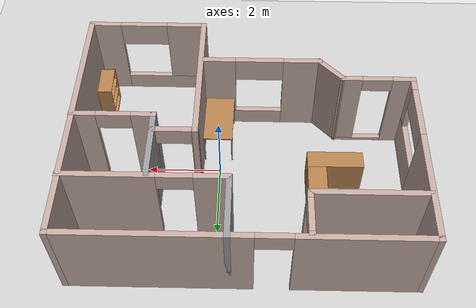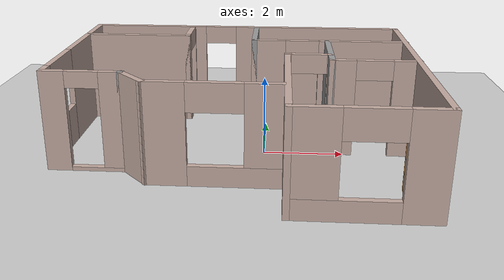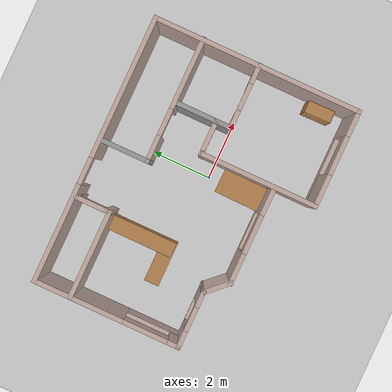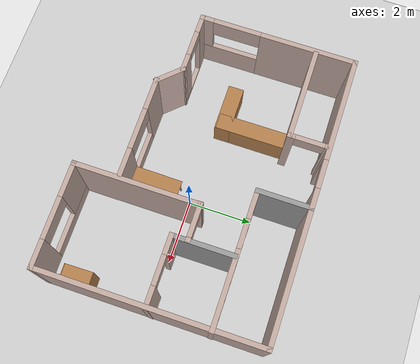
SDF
<sdf version="1.6">
 <world name="default">
  <model name="ground_plane">
   <static>1</static>
   <link name="link">
    <collision name="collision">
     <geometry><plane><normal>0 0 1</normal><size>100 100</size></plane></geometry>
     <surface><friction><ode><mu>100</mu><mu2>50</mu2></ode></friction></surface>
    </collision>
    <visual name="visual">
     <cast_shadows>0</cast_shadows>
     <geometry><plane><normal>0 0 1</normal><size>100 100</size></plane></geometry>
     <material>
      <script><uri>file://media/materials/scripts/gazebo.material</uri><name>Gazebo/Grey</name></script>
     </material>
    </visual>
   </link>
  </model>
  <model name="Building">
   <pose>-0.691358 0.12833 0 0 -0 0</pose>
   <link name="Wall_0">
    <pose>-0.008719 3.42505 0 0 -0 0</pose>
    <visual name="Wall_0_Visual_0">
     <pose>-2.83723 0 1.25 0 -0 0</pose>
     <geometry><box><size>3.32554 0.15 2.5</size></box></geometry>
     <material>
      <script><uri>file://media/materials/scripts/gazebo.material</uri><name>Gazebo/Grey</name></script>
      <ambient>0.760784 0.662745 0.627451 1</ambient>
     </material>
     <meta><layer>0</layer></meta>
    </visual>
    <collision name="Wall_0_Collision_0">
     <geometry><box><size>3.32554 0.15 2.5</size></box></geometry>
     <pose>-2.83723 0 1.25 0 -0 0</pose>
    </collision>
    <visual name="Wall_0_Visual_1">
     <pose>2.11277 0 1.25 0 -0 0</pose>
     <geometry><box><size>4.77445 0.15 2.5</size></box></geometry>
     <material>
      <script><uri>file://media/materials/scripts/gazebo.material</uri><name>Gazebo/Grey</name></script>
      <ambient>0.760784 0.662745 0.627451 1</ambient>
     </material>
     <meta><layer>0</layer></meta>
    </visual>
    <collision name="Wall_0_Collision_1">
     <geometry><box><size>4.77445 0.15 2.5</size></box></geometry>
     <pose>2.11277 0 1.25 0 -0 0</pose>
    </collision>
    <visual name="Wall_0_Visual_2">
     <pose>-0.724455 0 2.25 0 -0 0</pose>
     <geometry><box><size>0.9 0.15 0.5</size></box></geometry>
     <material>
      <script><uri>file://media/materials/scripts/gazebo.material</uri><name>Gazebo/Grey</name></script>
      <ambient>0.760784 0.662745 0.627451 1</ambient>
     </material>
     <meta><layer>0</layer></meta>
    </visual>
    <collision name="Wall_0_Collision_2">
     <geometry><box><size>0.9 0.15 0.5</size></box></geometry>
     <pose>-0.724455 0 2.25 0 -0 0</pose>
    </collision>
   </link>
   <link name="Wall_17">
    <collision name="Wall_17_Collision">
     <geometry><box><size>7 0.15 2.5</size></box></geometry>
     <pose>0 0 1.25 0 -0 0</pose>
    </collision>
    <visual name="Wall_17_Visual">
     <pose>0 0 1.25 0 -0 0</pose>
     <geometry><box><size>7 0.15 2.5</size></box></geometry>
     <material>
      <script><uri>file://media/materials/scripts/gazebo.material</uri><name>Gazebo/Grey</name></script>
      <ambient>0.760784 0.662745 0.627451 1</ambient>
     </material>
     <meta><layer>0</layer></meta>
    </visual>
    <pose>4.41628 5.1e-05 0 0 0 -1.5708</pose>
   </link>
   <link name="Wall_19">
    <pose>2.83077 -3.42495 0 0 -0 3.14159</pose>
    <visual name="Wall_19_Visual_0">
     <pose>-1.20755 0 1.25 0 -0 0</pose>
     <geometry><box><size>0.905905 0.15 2.5</size></box></geometry>
     <material>
      <script><uri>file://media/materials/scripts/gazebo.material</uri><name>Gazebo/Grey</name></script>
      <ambient>0.760784 0.662745 0.627451 1</ambient>
     </material>
     <meta><layer>0</layer></meta>
    </visual>
    <collision name="Wall_19_Collision_0">
     <geometry><box><size>0.905905 0.15 2.5</size></box></geometry>
     <pose>-1.20755 0 1.25 0 -0 0</pose>
    </collision>
    <visual name="Wall_19_Visual_1">
     <pose>0.452953 0 0.25 0 -0 0</pose>
     <geometry><box><size>2.41511 0.15 0.5</size></box></geometry>
     <material>
      <script><uri>file://media/materials/scripts/gazebo.material</uri><name>Gazebo/Grey</name></script>
      <ambient>0.760784 0.662745 0.627451 1</ambient>
     </material>
     <meta><layer>0</layer></meta>
    </visual>
    <collision name="Wall_19_Collision_1">
     <geometry><box><size>2.41511 0.15 0.5</size></box></geometry>
     <pose>0.452953 0 0.25 0 -0 0</pose>
    </collision>
    <visual name="Wall_19_Visual_2">
     <pose>1.10295 0 1.5 0 -0 0</pose>
     <geometry><box><size>1.11511 0.15 2</size></box></geometry>
     <material>
      <script><uri>file://media/materials/scripts/gazebo.material</uri><name>Gazebo/Grey</name></script>
      <ambient>0.760784 0.662745 0.627451 1</ambient>
     </material>
     <meta><layer>0</layer></meta>
    </visual>
    <collision name="Wall_19_Collision_2">
     <geometry><box><size>1.11511 0.15 2</size></box></geometry>
     <pose>1.10295 0 1.5 0 -0 0</pose>
    </collision>
    <visual name="Wall_19_Visual_3">
     <pose>-0.104603 0 2.15 0 -0 0</pose>
     <geometry><box><size>1.3 0.15 0.7</size></box></geometry>
     <material>
      <script><uri>file://media/materials/scripts/gazebo.material</uri><name>Gazebo/Grey</name></script>
      <ambient>0.760784 0.662745 0.627451 1</ambient>
     </material>
     <meta><layer>0</layer></meta>
    </visual>
    <collision name="Wall_19_Collision_3">
     <geometry><box><size>1.3 0.15 0.7</size></box></geometry>
     <pose>-0.104603 0 2.15 0 -0 0</pose>
    </collision>
   </link>
   <link name="Wall_23">
    <pose>-3.50872 -1.42495 0 0 -0 0</pose>
    <visual name="Wall_23_Visual_0">
     <pose>-0.693942 0 1.25 0 -0 0</pose>
     <geometry><box><size>0.612115 0.15 2.5</size></box></geometry>
     <material>
      <script><uri>file://media/materials/scripts/gazebo.material</uri><name>Gazebo/Grey</name></script>
      <ambient>0.760784 0.662745 0.627451 1</ambient>
     </material>
     <meta><layer>0</layer></meta>
    </visual>
    <collision name="Wall_23_Collision_0">
     <geometry><box><size>0.612115 0.15 2.5</size></box></geometry>
     <pose>-0.693942 0 1.25 0 -0 0</pose>
    </collision>
    <visual name="Wall_23_Visual_1">
     <pose>0.306058 0 0.05 0 -0 0</pose>
     <geometry><box><size>1.38789 0.15 0.1</size></box></geometry>
     <material>
      <script><uri>file://media/materials/scripts/gazebo.material</uri><name>Gazebo/Grey</name></script>
      <ambient>0.760784 0.662745 0.627451 1</ambient>
     </material>
     <meta><layer>0</layer></meta>
    </visual>
    <collision name="Wall_23_Collision_1">
     <geometry><box><size>1.38789 0.15 0.1</size></box></geometry>
     <pose>0.306058 0 0.05 0 -0 0</pose>
    </collision>
    <visual name="Wall_23_Visual_2">
     <pose>0.706058 0 1.3 0 -0 0</pose>
     <geometry><box><size>0.587885 0.15 2.4</size></box></geometry>
     <material>
      <script><uri>file://media/materials/scripts/gazebo.material</uri><name>Gazebo/Grey</name></script>
      <ambient>0.760784 0.662745 0.627451 1</ambient>
     </material>
     <meta><layer>0</layer></meta>
    </visual>
    <collision name="Wall_23_Collision_2">
     <geometry><box><size>0.587885 0.15 2.4</size></box></geometry>
     <pose>0.706058 0 1.3 0 -0 0</pose>
    </collision>
    <visual name="Wall_23_Visual_3">
     <pose>0.012115 0 2.3 0 -0 0</pose>
     <geometry><box><size>0.8 0.15 0.4</size></box></geometry>
     <material>
      <script><uri>file://media/materials/scripts/gazebo.material</uri><name>Gazebo/Grey</name></script>
      <ambient>0.760784 0.662745 0.627451 1</ambient>
     </material>
     <meta><layer>0</layer></meta>
    </visual>
    <collision name="Wall_23_Collision_3">
     <geometry><box><size>0.8 0.15 0.4</size></box></geometry>
     <pose>0.012115 0 2.3 0 -0 0</pose>
    </collision>
   </link>
   <link name="Wall_24">
    <collision name="Wall_24_Collision">
     <geometry><box><size>1.02135 0.15 2.5</size></box></geometry>
     <pose>0 0 1.25 0 -0 0</pose>
    </collision>
    <visual name="Wall_24_Visual">
     <pose>0 0 1.25 0 -0 0</pose>
     <geometry><box><size>1.02135 0.15 2.5</size></box></geometry>
     <material>
      <script><uri>file://media/materials/scripts/gazebo.material</uri><name>Gazebo/Grey</name></script>
      <ambient>0.760784 0.662745 0.627451 1</ambient>
     </material>
     <meta><layer>0</layer></meta>
    </visual>
    <pose>-2.2832 -1.74038 0 0 0 -0.809608</pose>
   </link>
   <link name="Wall_27">
    <collision name="Wall_27_Collision">
     <geometry><box><size>1.75 0.15 2.5</size></box></geometry>
     <pose>0 0 1.25 0 -0 0</pose>
    </collision>
    <visual name="Wall_27_Visual">
     <pose>0 0 1.25 0 -0 0</pose>
     <geometry><box><size>1.75 0.15 2.5</size></box></geometry>
     <material>
      <script><uri>file://media/materials/scripts/gazebo.material</uri><name>Gazebo/Grey</name></script>
      <ambient>1 1 1 1</ambient>
     </material>
     <meta><layer>0</layer></meta>
    </visual>
    <pose>0.33372 2.62505 0 0 0 -1.5708</pose>
   </link>
   <link name="Wall_28">
    <pose>2.38372 1.82505 0 0 -0 0</pose>
    <visual name="Wall_28_Visual_0">
     <pose>-1.65584 0 1.25 0 -0 0</pose>
     <geometry><box><size>0.93832 0.15 2.5</size></box></geometry>
     <material>
      <script><uri>file://media/materials/scripts/gazebo.material</uri><name>Gazebo/Grey</name></script>
      <ambient>0.760784 0.662745 0.627451 1</ambient>
     </material>
     <meta><layer>0</layer></meta>
    </visual>
    <collision name="Wall_28_Collision_0">
     <geometry><box><size>0.93832 0.15 2.5</size></box></geometry>
     <pose>-1.65584 0 1.25 0 -0 0</pose>
    </collision>
    <visual name="Wall_28_Visual_1">
     <pose>0.91916 0 1.25 0 -0 0</pose>
     <geometry><box><size>2.41168 0.15 2.5</size></box></geometry>
     <material>
      <script><uri>file://media/materials/scripts/gazebo.material</uri><name>Gazebo/Grey</name></script>
      <ambient>0.760784 0.662745 0.627451 1</ambient>
     </material>
     <meta><layer>0</layer></meta>
    </visual>
    <collision name="Wall_28_Collision_1">
     <geometry><box><size>2.41168 0.15 2.5</size></box></geometry>
     <pose>0.91916 0 1.25 0 -0 0</pose>
    </collision>
    <visual name="Wall_28_Visual_2">
     <pose>-0.73668 0 2.25 0 -0 0</pose>
     <geometry><box><size>0.9 0.15 0.5</size></box></geometry>
     <material>
      <script><uri>file://media/materials/scripts/gazebo.material</uri><name>Gazebo/Grey</name></script>
      <ambient>0.760784 0.662745 0.627451 1</ambient>
     </material>
     <meta><layer>0</layer></meta>
    </visual>
    <collision name="Wall_28_Collision_2">
     <geometry><box><size>0.9 0.15 0.5</size></box></geometry>
     <pose>-0.73668 0 2.25 0 -0 0</pose>
    </collision>
   </link>
   <link name="Wall_30">
    <collision name="Wall_30_Collision">
     <geometry><box><size>2 0.15 2.5</size></box></geometry>
     <pose>0 0 1.25 0 -0 0</pose>
    </collision>
    <visual name="Wall_30_Visual">
     <pose>0 0 1.25 0 -0 0</pose>
     <geometry><box><size>2 0.15 2.5</size></box></geometry>
     <material>
      <script><uri>file://media/materials/scripts/gazebo.material</uri><name>Gazebo/Grey</name></script>
      <ambient>1 1 1 1</ambient>
     </material>
     <meta><layer>0</layer></meta>
    </visual>
    <pose>2.32759 0.85598 0 0 0 -1.5708</pose>
   </link>
   <link name="Wall_32">
    <pose>3.37759 -0.06902 0 0 -0 0</pose>
    <visual name="Wall_32_Visual_0">
     <pose>-0.796543 0 1.25 0 -0 0</pose>
     <geometry><box><size>0.656914 0.15 2.5</size></box></geometry>
     <material>
      <script><uri>file://media/materials/scripts/gazebo.material</uri><name>Gazebo/Grey</name></script>
      <ambient>0.760784 0.662745 0.627451 1</ambient>
     </material>
     <meta><layer>0</layer></meta>
    </visual>
    <collision name="Wall_32_Collision_0">
     <geometry><box><size>0.656914 0.15 2.5</size></box></geometry>
     <pose>-0.796543 0 1.25 0 -0 0</pose>
    </collision>
    <visual name="Wall_32_Visual_1">
     <pose>0.778457 0 1.25 0 -0 0</pose>
     <geometry><box><size>0.693086 0.15 2.5</size></box></geometry>
     <material>
      <script><uri>file://media/materials/scripts/gazebo.material</uri><name>Gazebo/Grey</name></script>
      <ambient>0.760784 0.662745 0.627451 1</ambient>
     </material>
     <meta><layer>0</layer></meta>
    </visual>
    <collision name="Wall_32_Collision_1">
     <geometry><box><size>0.693086 0.15 2.5</size></box></geometry>
     <pose>0.778457 0 1.25 0 -0 0</pose>
    </collision>
    <visual name="Wall_32_Visual_2">
     <pose>-0.018086 0 2.25 0 -0 0</pose>
     <geometry><box><size>0.9 0.15 0.5</size></box></geometry>
     <material>
      <script><uri>file://media/materials/scripts/gazebo.material</uri><name>Gazebo/Grey</name></script>
      <ambient>0.760784 0.662745 0.627451 1</ambient>
     </material>
     <meta><layer>0</layer></meta>
    </visual>
    <collision name="Wall_32_Collision_2">
     <geometry><box><size>0.9 0.15 0.5</size></box></geometry>
     <pose>-0.018086 0 2.25 0 -0 0</pose>
    </collision>
   </link>
   <link name="Wall_34">
    <collision name="Wall_34_Collision">
     <geometry><box><size>3 0.15 2.5</size></box></geometry>
     <pose>0 0 1.25 0 -0 0</pose>
    </collision>
    <visual name="Wall_34_Visual">
     <pose>0 0 1.25 0 -0 0</pose>
     <geometry><box><size>3 0.15 2.5</size></box></geometry>
     <material>
      <script><uri>file://media/materials/scripts/gazebo.material</uri><name>Gazebo/Grey</name></script>
      <ambient>0.760784 0.662745 0.627451 1</ambient>
     </material>
     <meta><layer>0</layer></meta>
    </visual>
    <pose>-2.99858 2.21823 0 0 -0 0</pose>
   </link>
   <link name="Wall_35">
    <pose>-1.57358 2.76823 0 0 -0 1.5708</pose>
    <visual name="Wall_35_Visual_0">
     <pose>-0.506424 0 1.25 0 -0 0</pose>
     <geometry><box><size>0.237152 0.15 2.5</size></box></geometry>
     <material>
      <script><uri>file://media/materials/scripts/gazebo.material</uri><name>Gazebo/Grey</name></script>
      <ambient>0.760784 0.662745 0.627451 1</ambient>
     </material>
     <meta><layer>0</layer></meta>
    </visual>
    <collision name="Wall_35_Collision_0">
     <geometry><box><size>0.237152 0.15 2.5</size></box></geometry>
     <pose>-0.506424 0 1.25 0 -0 0</pose>
    </collision>
    <visual name="Wall_35_Visual_1">
     <pose>0.568576 0 1.25 0 -0 0</pose>
     <geometry><box><size>0.112848 0.15 2.5</size></box></geometry>
     <material>
      <script><uri>file://media/materials/scripts/gazebo.material</uri><name>Gazebo/Grey</name></script>
      <ambient>0.760784 0.662745 0.627451 1</ambient>
     </material>
     <meta><layer>0</layer></meta>
    </visual>
    <collision name="Wall_35_Collision_1">
     <geometry><box><size>0.112848 0.15 2.5</size></box></geometry>
     <pose>0.568576 0 1.25 0 -0 0</pose>
    </collision>
    <visual name="Wall_35_Visual_2">
     <pose>0.062152 0 2.25 0 -0 0</pose>
     <geometry><box><size>0.9 0.15 0.5</size></box></geometry>
     <material>
      <script><uri>file://media/materials/scripts/gazebo.material</uri><name>Gazebo/Grey</name></script>
      <ambient>0.760784 0.662745 0.627451 1</ambient>
     </material>
     <meta><layer>0</layer></meta>
    </visual>
    <collision name="Wall_35_Collision_2">
     <geometry><box><size>0.9 0.15 0.5</size></box></geometry>
     <pose>0.062152 0 2.25 0 -0 0</pose>
    </collision>
   </link>
   <link name="Wall_37">
    <collision name="Wall_37_Collision">
     <geometry><box><size>3.99026 0.15 2.5</size></box></geometry>
     <pose>0 0 1.25 0 -0 0</pose>
    </collision>
    <visual name="Wall_37_Visual">
     <pose>0 0 1.25 0 -0 0</pose>
     <geometry><box><size>3.99026 0.15 2.5</size></box></geometry>
     <material>
      <script><uri>file://media/materials/scripts/gazebo.material</uri><name>Gazebo/Grey</name></script>
      <ambient>0.760784 0.662745 0.627451 1</ambient>
     </material>
     <meta><layer>0</layer></meta>
    </visual>
    <pose>1.23533 -1.50492 0 0 -0 1.57079</pose>
   </link>
   <link name="Wall_38">
    <pose>1.77039 0.415108 0 0 -0 0</pose>
    <visual name="Wall_38_Visual_0">
     <pose>-0.529272 0 1.25 0 -0 0</pose>
     <geometry><box><size>0.181455 0.15 2.5</size></box></geometry>
     <material>
      <script><uri>file://media/materials/scripts/gazebo.material</uri><name>Gazebo/Grey</name></script>
      <ambient>0.760784 0.662745 0.627451 1</ambient>
     </material>
     <meta><layer>0</layer></meta>
    </visual>
    <collision name="Wall_38_Collision_0">
     <geometry><box><size>0.181455 0.15 2.5</size></box></geometry>
     <pose>-0.529272 0 1.25 0 -0 0</pose>
    </collision>
    <visual name="Wall_38_Visual_1">
     <pose>0.540728 0 1.25 0 -0 0</pose>
     <geometry><box><size>0.158545 0.15 2.5</size></box></geometry>
     <material>
      <script><uri>file://media/materials/scripts/gazebo.material</uri><name>Gazebo/Grey</name></script>
      <ambient>0.760784 0.662745 0.627451 1</ambient>
     </material>
     <meta><layer>0</layer></meta>
    </visual>
    <collision name="Wall_38_Collision_1">
     <geometry><box><size>0.158545 0.15 2.5</size></box></geometry>
     <pose>0.540728 0 1.25 0 -0 0</pose>
    </collision>
    <visual name="Wall_38_Visual_2">
     <pose>0.011455 0 2.25 0 -0 0</pose>
     <geometry><box><size>0.9 0.15 0.5</size></box></geometry>
     <material>
      <script><uri>file://media/materials/scripts/gazebo.material</uri><name>Gazebo/Grey</name></script>
      <ambient>0.760784 0.662745 0.627451 1</ambient>
     </material>
     <meta><layer>0</layer></meta>
    </visual>
    <collision name="Wall_38_Collision_2">
     <geometry><box><size>0.9 0.15 0.5</size></box></geometry>
     <pose>0.011455 0 2.25 0 -0 0</pose>
    </collision>
   </link>
   <link name="Wall_4">
    <pose>-4.43372 1.00005 0 0 0 -1.5708</pose>
    <visual name="Wall_4_Visual_0">
     <pose>-0.974806 0 1.25 0 -0 0</pose>
     <geometry><box><size>3.05039 0.15 2.5</size></box></geometry>
     <material>
      <script><uri>file://media/materials/scripts/gazebo.material</uri><name>Gazebo/Grey</name></script>
      <ambient>0.760784 0.662745 0.627451 1</ambient>
     </material>
     <meta><layer>0</layer></meta>
    </visual>
    <collision name="Wall_4_Collision_0">
     <geometry><box><size>3.05039 0.15 2.5</size></box></geometry>
     <pose>-0.974806 0 1.25 0 -0 0</pose>
    </collision>
    <visual name="Wall_4_Visual_1">
     <pose>1.52519 0 0.5 0 -0 0</pose>
     <geometry><box><size>1.94961 0.15 1</size></box></geometry>
     <material>
      <script><uri>file://media/materials/scripts/gazebo.material</uri><name>Gazebo/Grey</name></script>
      <ambient>0.760784 0.662745 0.627451 1</ambient>
     </material>
     <meta><layer>0</layer></meta>
    </visual>
    <collision name="Wall_4_Collision_1">
     <geometry><box><size>1.94961 0.15 1</size></box></geometry>
     <pose>1.52519 0 0.5 0 -0 0</pose>
    </collision>
    <visual name="Wall_4_Visual_2">
     <pose>2.27519 0 1.75 0 -0 0</pose>
     <geometry><box><size>0.449611 0.15 1.5</size></box></geometry>
     <material>
      <script><uri>file://media/materials/scripts/gazebo.material</uri><name>Gazebo/Grey</name></script>
      <ambient>0.760784 0.662745 0.627451 1</ambient>
     </material>
     <meta><layer>0</layer></meta>
    </visual>
    <collision name="Wall_4_Collision_2">
     <geometry><box><size>0.449611 0.15 1.5</size></box></geometry>
     <pose>2.27519 0 1.75 0 -0 0</pose>
    </collision>
    <visual name="Wall_4_Visual_3">
     <pose>1.30039 0 2.15 0 -0 0</pose>
     <geometry><box><size>1.5 0.15 0.7</size></box></geometry>
     <material>
      <script><uri>file://media/materials/scripts/gazebo.material</uri><name>Gazebo/Grey</name></script>
      <ambient>0.760784 0.662745 0.627451 1</ambient>
     </material>
     <meta><layer>0</layer></meta>
    </visual>
    <collision name="Wall_4_Collision_3">
     <geometry><box><size>1.5 0.15 0.7</size></box></geometry>
     <pose>1.30039 0 2.15 0 -0 0</pose>
    </collision>
   </link>
   <link name="Wall_40">
    <pose>-0.432678 -2.05582 0 0 -0 0</pose>
    <visual name="Wall_40_Visual_0">
     <pose>-1.09985 0 1.25 0 -0 0</pose>
     <geometry><box><size>1.0503 0.15 2.5</size></box></geometry>
     <material>
      <script><uri>file://media/materials/scripts/gazebo.material</uri><name>Gazebo/Grey</name></script>
      <ambient>0.760784 0.662745 0.627451 1</ambient>
     </material>
     <meta><layer>0</layer></meta>
    </visual>
    <collision name="Wall_40_Collision_0">
     <geometry><box><size>1.0503 0.15 2.5</size></box></geometry>
     <pose>-1.09985 0 1.25 0 -0 0</pose>
    </collision>
    <visual name="Wall_40_Visual_1">
     <pose>0.52515 0 0.25 0 -0 0</pose>
     <geometry><box><size>2.1997 0.15 0.5</size></box></geometry>
     <material>
      <script><uri>file://media/materials/scripts/gazebo.material</uri><name>Gazebo/Grey</name></script>
      <ambient>0.760784 0.662745 0.627451 1</ambient>
     </material>
     <meta><layer>0</layer></meta>
    </visual>
    <collision name="Wall_40_Collision_1">
     <geometry><box><size>2.1997 0.15 0.5</size></box></geometry>
     <pose>0.52515 0 0.25 0 -0 0</pose>
    </collision>
    <visual name="Wall_40_Visual_2">
     <pose>1.17515 0 1.5 0 -0 0</pose>
     <geometry><box><size>0.8997 0.15 2</size></box></geometry>
     <material>
      <script><uri>file://media/materials/scripts/gazebo.material</uri><name>Gazebo/Grey</name></script>
      <ambient>0.760784 0.662745 0.627451 1</ambient>
     </material>
     <meta><layer>0</layer></meta>
    </visual>
    <collision name="Wall_40_Collision_2">
     <geometry><box><size>0.8997 0.15 2</size></box></geometry>
     <pose>1.17515 0 1.5 0 -0 0</pose>
    </collision>
    <visual name="Wall_40_Visual_3">
     <pose>0.0753 0 2.15 0 -0 0</pose>
     <geometry><box><size>1.3 0.15 0.7</size></box></geometry>
     <material>
      <script><uri>file://media/materials/scripts/gazebo.material</uri><name>Gazebo/Grey</name></script>
      <ambient>0.760784 0.662745 0.627451 1</ambient>
     </material>
     <meta><layer>0</layer></meta>
    </visual>
    <collision name="Wall_40_Collision_3">
     <geometry><box><size>1.3 0.15 0.7</size></box></geometry>
     <pose>0.0753 0 2.15 0 -0 0</pose>
    </collision>
   </link>
   <link name="Wall_42">
    <collision name="Wall_42_Collision">
     <geometry><box><size>2.25 0.5 1</size></box></geometry>
     <pose>0 0 0.5 0 -0 0</pose>
    </collision>
    <visual name="Wall_42_Visual">
     <pose>0 0 0.5 0 -0 0</pose>
     <geometry><box><size>2.25 0.5 1</size></box></geometry>
     <material>
      <script><uri>file://media/materials/scripts/gazebo.material</uri><name>Gazebo/Wood</name></script>
      <ambient>1 1 1 1</ambient>
     </material>
     <meta><layer>0</layer></meta>
    </visual>
    <pose>-1.93472 1.06205 0 0 0 -1.5708</pose>
   </link>
   <link name="Wall_44">
    <collision name="Wall_44_Collision">
     <geometry><box><size>1.5 0.5 1</size></box></geometry>
     <pose>0 0 0.5 0 -0 0</pose>
    </collision>
    <visual name="Wall_44_Visual">
     <pose>0 0 0.5 0 -0 0</pose>
     <geometry><box><size>1.5 0.5 1</size></box></geometry>
     <material>
      <script><uri>file://media/materials/scripts/gazebo.material</uri><name>Gazebo/Wood</name></script>
      <ambient>1 1 1 1</ambient>
     </material>
     <meta><layer>0</layer></meta>
    </visual>
    <pose>-2.43272 0.148052 0 0 -0 3.14159</pose>
   </link>
   <link name="Wall_6">
    <collision name="Wall_6_Collision">
     <geometry><box><size>0.15 0.15 2.5</size></box></geometry>
     <pose>0 0 1.25 0 -0 0</pose>
    </collision>
    <visual name="Wall_6_Visual">
     <pose>0 0 1.25 0 -0 0</pose>
     <geometry><box><size>0.15 0.15 2.5</size></box></geometry>
     <material>
      <script><uri>file://media/materials/scripts/gazebo.material</uri><name>Gazebo/Grey</name></script>
      <ambient>1 1 1 1</ambient>
     </material>
     <meta><layer>0</layer></meta>
    </visual>
    <pose>-2.58372 -1.42495 0 0 -0 0</pose>
   </link>
   <static>1</static>
  </model>
  <model name="table">
   <static>1</static>
   <link name="link">
    <collision name="surface">
     <pose>0 0 1 0 -0 0</pose>
     <geometry><box><size>1.5 0.8 0.03</size></box></geometry>
     <surface><friction><ode><mu>0.6</mu><mu2>0.6</mu2></ode></friction></surface>
    </collision>
    <visual name="visual1">
     <pose>0 0 1 0 -0 0</pose>
     <geometry><box><size>1.5 0.8 0.03</size></box></geometry>
     <material>
      <script><uri>file://media/materials/scripts/gazebo.material</uri><name>Gazebo/Wood</name></script>
     </material>
    </visual>
    <collision name="front_left_leg">
     <pose>0.68 0.38 0.5 0 -0 0</pose>
     <geometry><cylinder><radius>0.02</radius><length>1</length></cylinder></geometry>
    </collision>
    <visual name="front_left_leg">
     <pose>0.68 0.38 0.5 0 -0 0</pose>
     <geometry><cylinder><radius>0.02</radius><length>1</length></cylinder></geometry>
     <material>
      <script><uri>file://media/materials/scripts/gazebo.material</uri><name>Gazebo/Grey</name></script>
     </material>
    </visual>
    <collision name="front_right_leg">
     <pose>0.68 -0.38 0.5 0 -0 0</pose>
     <geometry><cylinder><radius>0.02</radius><length>1</length></cylinder></geometry>
    </collision>
    <visual name="front_right_leg">
     <pose>0.68 -0.38 0.5 0 -0 0</pose>
     <geometry><cylinder><radius>0.02</radius><length>1</length></cylinder></geometry>
     <material>
      <script><uri>file://media/materials/scripts/gazebo.material</uri><name>Gazebo/Grey</name></script>
     </material>
    </visual>
    <collision name="back_right_leg">
     <pose>-0.68 -0.38 0.5 0 -0 0</pose>
     <geometry><cylinder><radius>0.02</radius><length>1</length></cylinder></geometry>
    </collision>
    <visual name="back_right_leg">
     <pose>-0.68 -0.38 0.5 0 -0 0</pose>
     <geometry><cylinder><radius>0.02</radius><length>1</length></cylinder></geometry>
     <material>
      <script><uri>file://media/materials/scripts/gazebo.material</uri><name>Gazebo/Grey</name></script>
     </material>
    </visual>
    <collision name="back_left_leg">
     <pose>-0.68 0.38 0.5 0 -0 0</pose>
     <geometry><cylinder><radius>0.02</radius><length>1</length></cylinder></geometry>
    </collision>
    <visual name="back_left_leg">
     <pose>-0.68 0.38 0.5 0 -0 0</pose>
     <geometry><cylinder><radius>0.02</radius><length>1</length></cylinder></geometry>
     <material>
      <script><uri>file://media/materials/scripts/gazebo.material</uri><name>Gazebo/Grey</name></script>
     </material>
    </visual>
   </link>
   <pose>0.053466 -1.09473 0 0 0 -1.58225</pose>
  </model>
  <model name="bookshelf">
   <static>1</static>
   <link name="link">
    <inertial><mass>1</mass></inertial>
    <collision name="back">
     <pose>0 0.005 0.6 0 -0 0</pose>
     <geometry><box><size>0.9 0.01 1.2</size></box></geometry>
    </collision>
    <visual name="visual1">
     <pose>0 0.005 0.6 0 -0 0</pose>
     <geometry><box><size>0.9 0.01 1.2</size></box></geometry>
     <material>
      <script><uri>file://media/materials/scripts/gazebo.material</uri><name>Gazebo/Wood</name></script>
     </material>
    </visual>
    <collision name="left_side">
     <pose>0.45 -0.195 0.6 0 -0 0</pose>
     <geometry><box><size>0.02 0.4 1.2</size></box></geometry>
    </collision>
    <visual name="visual2">
     <pose>0.45 -0.195 0.6 0 -0 0</pose>
     <geometry><box><size>0.02 0.4 1.2</size></box></geometry>
     <material>
      <script><uri>file://media/materials/scripts/gazebo.material</uri><name>Gazebo/Wood</name></script>
     </material>
    </visual>
    <collision name="right_side">
     <pose>-0.45 -0.195 0.6 0 -0 0</pose>
     <geometry><box><size>0.02 0.4 1.2</size></box></geometry>
    </collision>
    <visual name="visual3">
     <pose>-0.45 -0.195 0.6 0 -0 0</pose>
     <geometry><box><size>0.02 0.4 1.2</size></box></geometry>
     <material>
      <script><uri>file://media/materials/scripts/gazebo.material</uri><name>Gazebo/Wood</name></script>
     </material>
    </visual>
    <collision name="bottom">
     <pose>0 -0.195 0.03 0 -0 0</pose>
     <geometry><box><size>0.88 0.4 0.06</size></box></geometry>
    </collision>
    <visual name="visual4">
     <pose>0 -0.195 0.03 0 -0 0</pose>
     <geometry><box><size>0.88 0.4 0.06</size></box></geometry>
     <material>
      <script><uri>file://media/materials/scripts/gazebo.material</uri><name>Gazebo/Wood</name></script>
     </material>
    </visual>
    <collision name="top">
     <pose>0 -0.195 1.19 0 -0 0</pose>
     <geometry><box><size>0.88 0.4 0.02</size></box></geometry>
    </collision>
    <visual name="visual5">
     <pose>0 -0.195 1.19 0 -0 0</pose>
     <geometry><box><size>0.88 0.4 0.02</size></box></geometry>
     <material>
      <script><uri>file://media/materials/scripts/gazebo.material</uri><name>Gazebo/Wood</name></script>
     </material>
    </visual>
    <collision name="low_shelf">
     <pose>0 -0.195 0.43 0 -0 0</pose>
     <geometry><box><size>0.88 0.4 0.02</size></box></geometry>
    </collision>
    <visual name="visual6">
     <pose>0 -0.195 0.43 0 -0 0</pose>
     <geometry><box><size>0.88 0.4 0.02</size></box></geometry>
     <material>
      <script><uri>file://media/materials/scripts/gazebo.material</uri><name>Gazebo/Wood</name></script>
     </material>
    </visual>
    <collision name="high_shelf">
     <pose>0 -0.195 0.8 0 -0 0</pose>
     <geometry><box><size>0.88 0.4 0.02</size></box></geometry>
    </collision>
    <visual name="visual7">
     <pose>0 -0.195 0.8 0 -0 0</pose>
     <geometry><box><size>0.88 0.4 0.02</size></box></geometry>
     <material>
      <script><uri>file://media/materials/scripts/gazebo.material</uri><name>Gazebo/Wood</name></script>
     </material>
    </visual>
   </link>
   <pose>3.58099 -2.31658 0 0 0 -1.55277</pose>
  </model>
 </world>
</sdf>
